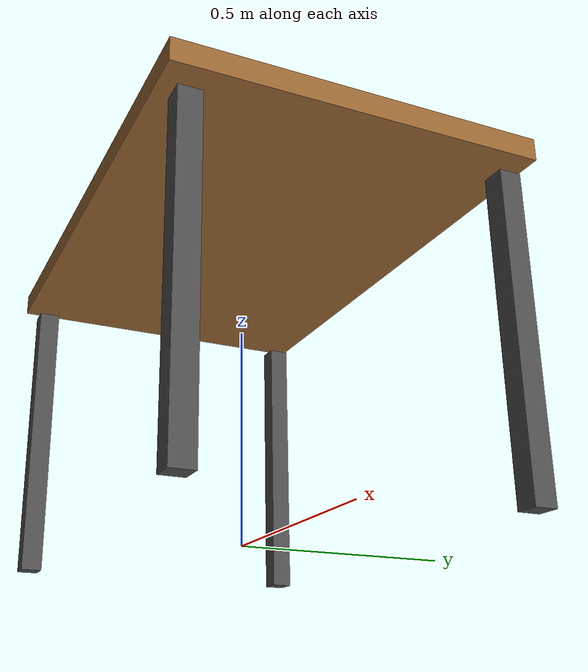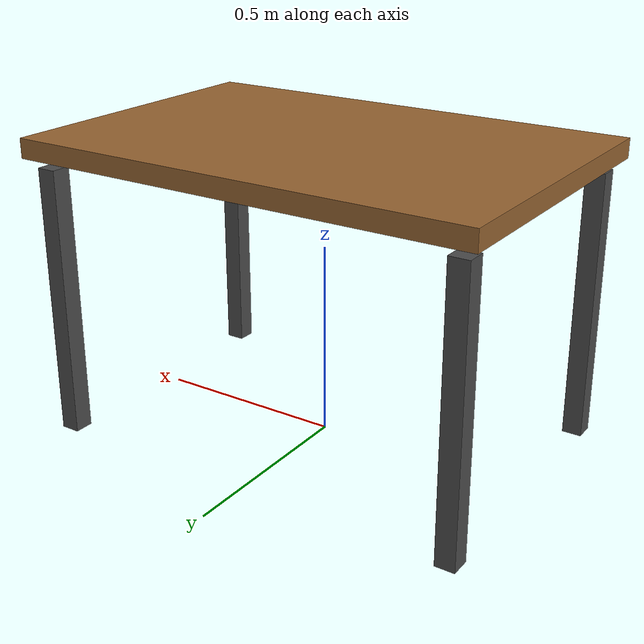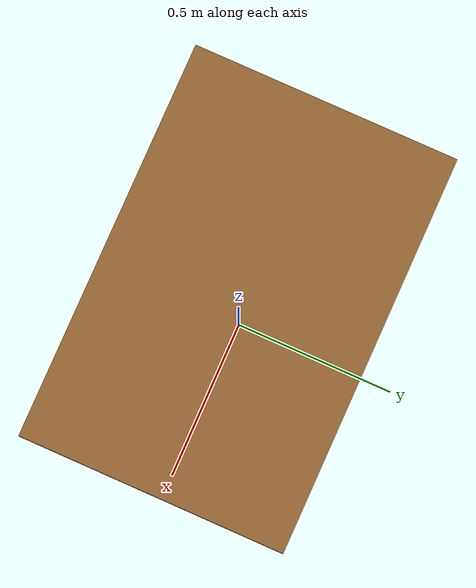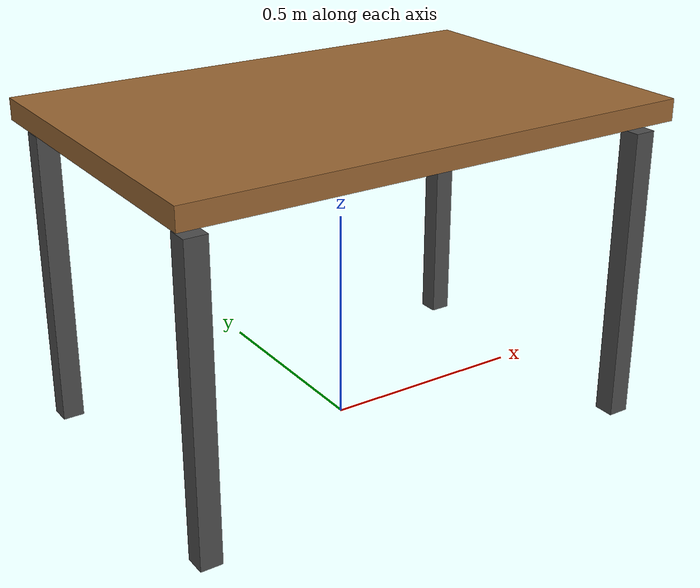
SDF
<?xml version="1.0"?>
<sdf version="1.7">

<model name="center_table">
  <static>true</static>

  <!-- Table top -->
  <link name="table_top">
    <pose>0 0 0.75 0 0 0</pose>
    <visual name="visual">
      <geometry>
        <box>
          <size>1.2 0.8 0.05</size>
        </box>
      </geometry>
      <material>
        <ambient>0.6 0.4 0.2 1</ambient>
        <diffuse>0.6 0.4 0.2 1</diffuse>
      </material>
    </visual>
    <collision name="collision">
      <geometry>
        <box>
          <size>1.2 0.8 0.05</size>
        </box>
      </geometry>
    </collision>
  </link>

  <!-- 4 legs -->
  <!-- leg length = 0.7, thickness = 0.05 -->
  <link name="leg1">
    <pose>0.55 0.35 0.35 0 0 0</pose>
    <visual name="visual">
      <geometry>
        <box><size>0.05 0.05 0.7</size></box>
      </geometry>
      <material><ambient>0.3 0.3 0.3 1</ambient></material>
    </visual>
    <collision name="collision">
      <geometry><box><size>0.05 0.05 0.7</size></box></geometry>
    </collision>
  </link>

  <link name="leg2">
    <pose>-0.55 0.35 0.35 0 0 0</pose>
    <visual name="visual">
      <geometry><box><size>0.05 0.05 0.7</size></box></geometry>
      <material><ambient>0.3 0.3 0.3 1</ambient></material>
    </visual>
    <collision name="collision">
      <geometry><box><size>0.05 0.05 0.7</size></box></geometry>
    </collision>
  </link>

  <link name="leg3">
    <pose>0.55 -0.35 0.35 0 0 0</pose>
    <visual name="visual">
      <geometry><box><size>0.05 0.05 0.7</size></box></geometry>
      <material><ambient>0.3 0.3 0.3 1</ambient></material>
    </visual>
    <collision name="collision">
      <geometry><box><size>0.05 0.05 0.7</size></box></geometry>
    </collision>
  </link>

  <link name="leg4">
    <pose>-0.55 -0.35 0.35 0 0 0</pose>
    <visual name="visual">
      <geometry><box><size>0.05 0.05 0.7</size></box></geometry>
      <material><ambient>0.3 0.3 0.3 1</ambient></material>
    </visual>
    <collision name="collision">
      <geometry><box><size>0.05 0.05 0.7</size></box></geometry>
    </collision>
  </link>

</model>

</sdf>
